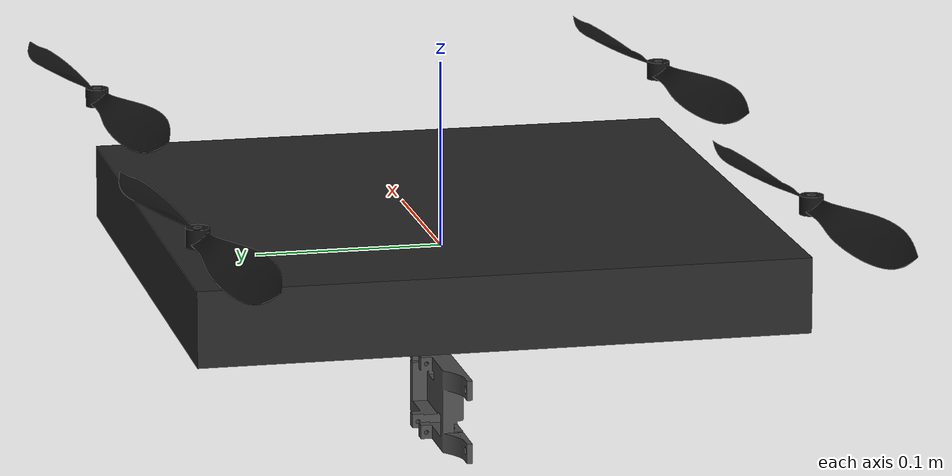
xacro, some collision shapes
<?xml version="1.0"?>
<robot name="f450" xmlns:xacro="http://www.ros.org/wiki/xacro">

  <!--
    mesh_path: 런치파일에서 절대경로로 주입
    예) xacro f450.urdf.xacro mesh_path:=/home/user/ros2_ws/install/.../meshes
  -->
  <xacro:arg name="mesh_path" default=""/>

  <xacro:property name="PI"         value="3.14159265359"/>
  <xacro:property name="arm_length" value="0.1591"/>
  <xacro:property name="motor_z"    value="0.058"/>
  <xacro:property name="cam_z"      value="-0.08"/>
  <xacro:property name="mp"         value="$(arg mesh_path)"/>
  <!-- ── 모터 物理 상수 (JMT F15843, 920KV + 1045 prop, 3S 11.1V 기준) ── -->
  <xacro:property name="max_rot_vel"     value="1069.0"/>   <!-- rad/s = KV*V*2pi/60 -->
  <xacro:property name="motor_constant"  value="7.73e-6"/>  <!-- kT = T_max / w_max^2 -->
  <xacro:property name="moment_constant" value="0.02"/>     <!-- kQ/kT (m), 1045 prop 기준 -->

  <material name="dark_carbon"><color rgba="0.15 0.15 0.15 1.0"/></material>
  <material name="black_prop">  <color rgba="0.08 0.08 0.08 1.0"/></material>
  <material name="camera_grey"> <color rgba="0.30 0.30 0.30 1.0"/></material>

  <link name="base_link">
    <visual>
      <origin xyz="0 0 0" rpy="${PI/2} 0 0"/>
      <geometry>
        <mesh filename="file://${mp}/f450_body.stl"
              scale="0.001 0.001 0.001"/>
      </geometry>
      <material name="dark_carbon"/>
    </visual>
    <collision>
      <origin xyz="0 0 0.005" rpy="0 0 0"/>
      <geometry><box size="0.32 0.32 0.04"/></geometry>
    </collision>
    <collision>
      <origin xyz="0 0 -0.163" rpy="0 0 0"/>
      <geometry><box size="0.22 0.22 0.01"/></geometry>
    </collision>
    <inertial>
      <mass value="1.345"/>
      <origin xyz="0.006264 0.000157 0.00833" rpy="0 0 0"/>
      <inertia ixx="0.005"     ixy="-1.692e-5" ixz="-1.206e-4"
               iyy="0.005"    iyz="-7.965e-7"  izz="0.007"/>
    </inertial>
  </link>

  <xacro:macro name="rotor" params="name x y z cw">
    <link name="${name}_link">
      <visual>
        <origin xyz="0 0 0" rpy="0 0 ${PI if cw else 0}"/>
        <geometry>
          <mesh filename="file://${mp}/f450_prop.stl"
                scale="0.001 0.001 0.001"/>
        </geometry>
        <material name="black_prop"/>
      </visual>
      <collision>
        <origin xyz="0 0 -0.005" rpy="0 0 0"/>
        <geometry><cylinder radius="0.130" length="0.010"/></geometry>
      </collision>
      <inertial>
        <mass value="0.01"/>
        <origin xyz="0.000001 -0.0000002845 0.006174" rpy="0 0 0"/>
        <inertia ixx="8.593e-6"  ixy="4.904e-6" ixz="0"
                 iyy="4.596e-5" iyz="0"          izz="4.568e-5"/>
      </inertial>
    </link>
    <joint name="${name}_joint" type="continuous">
      <parent link="base_link"/>
      <child  link="${name}_link"/>
      <origin xyz="${x} ${y} ${z}" rpy="0 0 0"/>
      <axis xyz="0 0 ${-1 if cw else 1}"/>
      <dynamics damping="0.001" friction="0.0"/>
    </joint>
  </xacro:macro>

  <xacro:rotor name="rotor_0" x="${ arm_length}" y="${-arm_length}" z="${motor_z}" cw="false"/>
  <xacro:rotor name="rotor_1" x="${-arm_length}" y="${ arm_length}" z="${motor_z}" cw="false"/>
  <xacro:rotor name="rotor_2" x="${ arm_length}" y="${ arm_length}" z="${motor_z}" cw="true"/>
  <xacro:rotor name="rotor_3" x="${-arm_length}" y="${-arm_length}" z="${motor_z}" cw="true"/>

  <!-- ── 모터 동역학 모델 (Gazebo MulticopterMotorModel) ── -->
  <xacro:macro name="motor_model" params="name number direction">
    <gazebo>
      <plugin filename="gz-sim-multicopter-motor-model-system"
              name="gz::sim::systems::MulticopterMotorModel">
        <jointName>${name}_joint</jointName>
        <linkName>${name}_link</linkName>
        <turningDirection>${direction}</turningDirection>
        <timeConstantUp>0.0125</timeConstantUp>
        <timeConstantDown>0.025</timeConstantDown>
        <maxRotVelocity>${max_rot_vel}</maxRotVelocity>
        <motorConstant>${motor_constant}</motorConstant>
        <momentConstant>${moment_constant}</momentConstant>
        <commandSubTopic>command/motor_speed</commandSubTopic>
        <motorNumber>${number}</motorNumber>
        <rotorDragCoefficient>0.000175</rotorDragCoefficient>
        <rollingMomentCoefficient>1.0e-6</rollingMomentCoefficient>
        <rotorVelocitySlowdownSim>10</rotorVelocitySlowdownSim>
        <motorType>velocity</motorType>
      </plugin>
    </gazebo>
  </xacro:macro>

  <xacro:motor_model name="rotor_0" number="0" direction="ccw"/>
  <xacro:motor_model name="rotor_1" number="1" direction="ccw"/>
  <xacro:motor_model name="rotor_2" number="2" direction="cw"/>
  <xacro:motor_model name="rotor_3" number="3" direction="cw"/>

  <link name="camera_link">
    <visual>
      <origin xyz="0 0 0" rpy="0 0 0"/>
      <geometry>
        <mesh filename="file://${mp}/camera_base.stl"
              scale="0.001 0.001 0.001"/>
      </geometry>
      <material name="camera_grey"/>
    </visual>
    <collision>
      <origin xyz="0 0 0" rpy="0 0 0"/>
      <geometry><box size="0.129 0.017 0.045"/></geometry>
    </collision>
    <inertial>
      <mass value="0.100"/>
      <origin xyz="0 0 0"/>
      <inertia ixx="2.0e-5" ixy="0" ixz="0"
               iyy="2.0e-5" iyz="0"
               izz="2.0e-5"/>
    </inertial>
  </link>

  <joint name="camera_joint" type="fixed">
    <parent link="base_link"/>
    <child  link="camera_link"/>
    <origin xyz="0 0 ${cam_z}" rpy="${PI} 0 0"/>
  </joint>

  <link name="camera_optical_frame"/>
  <joint name="camera_optical_joint" type="fixed">
    <parent link="camera_link"/>
    <child  link="camera_optical_frame"/>
    <origin xyz="0 0 0" rpy="${-PI/2} 0 ${-PI/2}"/>
  </joint>

  <gazebo reference="camera_link">
    <sensor name="pc3506_camera" type="camera">
      <always_on>1</always_on>
      <update_rate>30</update_rate>
      <visualize>true</visualize>
      <camera name="pc3506">
        <horizontal_fov>0.899</horizontal_fov>
        <image>
          <width>640</width><height>480</height>
          <format>R8G8B8</format>
        </image>
        <clip><near>0.05</near><far>50.0</far></clip>
        <noise><type>gaussian</type><mean>0.0</mean><stddev>0.005</stddev></noise>
        <lens>
          <intrinsics>
            <fx>662.62</fx><fy>618.45</fy>
            <cx>409.89</cx><cy>220.37</cy><s>0</s>
          </intrinsics>
        </lens>
      </camera>
      <topic>/f450/camera/image_raw</topic>
      <gz_frame_id>camera_optical_frame</gz_frame_id>
    </sensor>
  </gazebo>

  <gazebo reference="base_link">
    <sensor name="imu_sensor" type="imu">
      <always_on>1</always_on>
      <update_rate>250</update_rate>
      <imu>
        <angular_velocity>
          <x><noise type="gaussian"><mean>0</mean><stddev>0.005</stddev></noise></x>
          <y><noise type="gaussian"><mean>0</mean><stddev>0.005</stddev></noise></y>
          <z><noise type="gaussian"><mean>0</mean><stddev>0.005</stddev></noise></z>
        </angular_velocity>
        <linear_acceleration>
          <x><noise type="gaussian"><mean>0</mean><stddev>0.02</stddev></noise></x>
          <y><noise type="gaussian"><mean>0</mean><stddev>0.02</stddev></noise></y>
          <z><noise type="gaussian"><mean>0</mean><stddev>0.02</stddev></noise></z>
        </linear_acceleration>
      </imu>
      <topic>/f450/imu</topic>
      <gz_frame_id>base_link</gz_frame_id>
    </sensor>
  </gazebo>

</robot>
